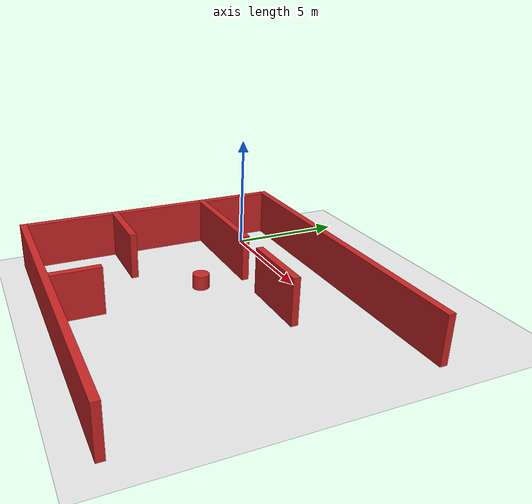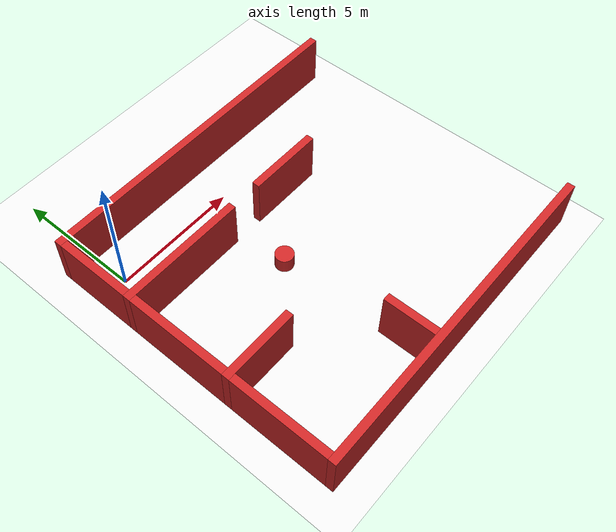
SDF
<sdf version="1.7">
 <world name="default">
  <model name="ground_plane">
   <static>1</static>
   <link name="link">
    <collision name="collision">
     <geometry><plane><normal>0 0 1</normal><size>100 100</size></plane></geometry>
     <surface>
      <contact><collide_bitmask>65535</collide_bitmask></contact>
      <friction><ode><mu>100</mu><mu2>50</mu2></ode></friction>
     </surface>
    </collision>
    <visual name="visual">
     <cast_shadows>0</cast_shadows>
     <geometry><plane><normal>0 0 1</normal><size>100 100</size></plane></geometry>
     <material>
      <script><uri>file://media/materials/scripts/gazebo.material</uri><name>Gazebo/White</name></script>
     </material>
    </visual>
   </link>
  </model>
  <model name="unit_box_clone">
   <link name="link">
    <inertial>
     <mass>1</mass>
     <inertia>
      <ixx>0.166667</ixx>
      <ixy>0</ixy>
      <ixz>0</ixz>
      <iyy>0.166667</iyy>
      <iyz>0</iyz>
      <izz>0.166667</izz>
     </inertia>
    </inertial>
    <visual name="visual">
     <geometry><box><size>5 0.3 2</size></box></geometry>
     <material>
      <script><name>Gazebo/Red</name><uri>file://media/materials/scripts/gazebo.material</uri></script>
      <shader type="pixel"><normal_map>__default__</normal_map></shader>
      <ambient>1 0 0 1</ambient>
      <diffuse>1 0 0 1</diffuse>
      <specular>0.1 0.1 0.1 1</specular>
      <emissive>0 0 0 1</emissive>
     </material>
    </visual>
    <collision name="collision">
     <geometry><box><size>5 0.3 2</size></box></geometry>
     <surface>
      <friction>
       <ode><mu>1</mu><mu2>1</mu2><fdir1>0 0 0</fdir1><slip1>0</slip1><slip2>0</slip2></ode>
       <torsional>
        <coefficient>1</coefficient>
        <patch_radius>0</patch_radius>
        <surface_radius>0</surface_radius>
        <use_patch_radius>1</use_patch_radius>
        <ode><slip>0</slip></ode>
       </torsional>
      </friction>
      <bounce><restitution_coefficient>0</restitution_coefficient><threshold>1e+06</threshold></bounce>
      <contact>
       <collide_without_contact>0</collide_without_contact>
       <collide_without_contact_bitmask>1</collide_without_contact_bitmask>
       <collide_bitmask>1</collide_bitmask>
       <ode>
        <soft_cfm>0</soft_cfm>
        <soft_erp>0.2</soft_erp>
        <kp>1e+13</kp>
        <kd>1</kd>
        <max_vel>0.01</max_vel>
        <min_depth>0</min_depth>
       </ode>
       <bullet>
        <split_impulse>1</split_impulse>
        <split_impulse_penetration_threshold>-0.01</split_impulse_penetration_threshold>
        <soft_cfm>0</soft_cfm>
        <soft_erp>0.2</soft_erp>
        <kp>1e+13</kp>
        <kd>1</kd>
       </bullet>
      </contact>
     </surface>
    </collision>
   </link>
   <static>1</static>
   <pose>1.35 -1.65 1 1e-05 -0 0</pose>
  </model>
  <model name="unit_box">
   <link name="link">
    <inertial>
     <mass>1</mass>
     <inertia>
      <ixx>0.166667</ixx>
      <ixy>0</ixy>
      <ixz>0</ixz>
      <iyy>0.166667</iyy>
      <iyz>0</iyz>
      <izz>0.166667</izz>
     </inertia>
    </inertial>
    <visual name="visual">
     <geometry><box><size>0.3 3 2</size></box></geometry>
     <material>
      <script><name>Gazebo/Red</name><uri>file://media/materials/scripts/gazebo.material</uri></script>
      <shader type="pixel"><normal_map>__default__</normal_map></shader>
      <ambient>1 0 0 1</ambient>
      <diffuse>1 0 0 1</diffuse>
      <specular>0.1 0.1 0.1 1</specular>
      <emissive>0 0 0 1</emissive>
     </material>
    </visual>
    <collision name="collision">
     <geometry><box><size>0.3 3 2</size></box></geometry>
     <surface>
      <friction>
       <ode><mu>1</mu><mu2>1</mu2><fdir1>0 0 0</fdir1><slip1>0</slip1><slip2>0</slip2></ode>
       <torsional>
        <coefficient>1</coefficient>
        <patch_radius>0</patch_radius>
        <surface_radius>0</surface_radius>
        <use_patch_radius>1</use_patch_radius>
        <ode><slip>0</slip></ode>
       </torsional>
      </friction>
      <bounce><restitution_coefficient>0</restitution_coefficient><threshold>1e+06</threshold></bounce>
      <contact>
       <collide_without_contact>0</collide_without_contact>
       <collide_without_contact_bitmask>1</collide_without_contact_bitmask>
       <collide_bitmask>1</collide_bitmask>
       <ode>
        <soft_cfm>0</soft_cfm>
        <soft_erp>0.2</soft_erp>
        <kp>1e+13</kp>
        <kd>1</kd>
        <max_vel>0.01</max_vel>
        <min_depth>0</min_depth>
       </ode>
       <bullet>
        <split_impulse>1</split_impulse>
        <split_impulse_penetration_threshold>-0.01</split_impulse_penetration_threshold>
        <soft_cfm>0</soft_cfm>
        <soft_erp>0.2</soft_erp>
        <kp>1e+13</kp>
        <kd>1</kd>
       </bullet>
      </contact>
     </surface>
    </collision>
   </link>
   <static>1</static>
   <pose>-1 0 1 1e-05 -0 0</pose>
  </model>
  <model name="unit_box_clone_clone_0">
   <link name="link">
    <inertial>
     <mass>1</mass>
     <inertia>
      <ixx>0.166667</ixx>
      <ixy>0</ixy>
      <ixz>0</ixz>
      <iyy>0.166667</iyy>
      <iyz>0</iyz>
      <izz>0.166667</izz>
     </inertia>
    </inertial>
    <visual name="visual">
     <geometry><box><size>13.4 0.3 2</size></box></geometry>
     <material>
      <script><name>Gazebo/Red</name><uri>file://media/materials/scripts/gazebo.material</uri></script>
      <shader type="pixel"><normal_map>__default__</normal_map></shader>
      <ambient>1 0 0 1</ambient>
      <diffuse>1 0 0 1</diffuse>
      <specular>0.1 0.1 0.1 1</specular>
      <emissive>0 0 0 1</emissive>
     </material>
    </visual>
    <collision name="collision">
     <geometry><box><size>13.4 0.3 2</size></box></geometry>
     <surface>
      <friction>
       <ode><mu>1</mu><mu2>1</mu2><fdir1>0 0 0</fdir1><slip1>0</slip1><slip2>0</slip2></ode>
       <torsional>
        <coefficient>1</coefficient>
        <patch_radius>0</patch_radius>
        <surface_radius>0</surface_radius>
        <use_patch_radius>1</use_patch_radius>
        <ode><slip>0</slip></ode>
       </torsional>
      </friction>
      <bounce><restitution_coefficient>0</restitution_coefficient><threshold>1e+06</threshold></bounce>
      <contact>
       <collide_without_contact>0</collide_without_contact>
       <collide_without_contact_bitmask>1</collide_without_contact_bitmask>
       <collide_bitmask>1</collide_bitmask>
       <ode>
        <soft_cfm>0</soft_cfm>
        <soft_erp>0.2</soft_erp>
        <kp>1e+13</kp>
        <kd>1</kd>
        <max_vel>0.01</max_vel>
        <min_depth>0</min_depth>
       </ode>
       <bullet>
        <split_impulse>1</split_impulse>
        <split_impulse_penetration_threshold>-0.01</split_impulse_penetration_threshold>
        <soft_cfm>0</soft_cfm>
        <soft_erp>0.2</soft_erp>
        <kp>1e+13</kp>
        <kd>1</kd>
       </bullet>
      </contact>
     </surface>
    </collision>
   </link>
   <static>1</static>
   <pose>5.55 1.65 1 1e-05 -0 0</pose>
  </model>
  <model name="unit_box_clone_clone">
   <link name="link">
    <inertial>
     <mass>1</mass>
     <inertia>
      <ixx>0.166667</ixx>
      <ixy>0</ixy>
      <ixz>0</ixz>
      <iyy>0.166667</iyy>
      <iyz>0</iyz>
      <izz>0.166667</izz>
     </inertia>
    </inertial>
    <visual name="visual">
     <geometry><box><size>3 0.3 2</size></box></geometry>
     <material>
      <script><name>Gazebo/Red</name><uri>file://media/materials/scripts/gazebo.material</uri></script>
      <shader type="pixel"><normal_map>__default__</normal_map></shader>
      <ambient>1 0 0 1</ambient>
      <diffuse>1 0 0 1</diffuse>
      <specular>0.1 0.1 0.1 1</specular>
      <emissive>0 0 0 1</emissive>
     </material>
    </visual>
    <collision name="collision">
     <geometry><box><size>3 0.3 2</size></box></geometry>
     <surface>
      <friction>
       <ode><mu>1</mu><mu2>1</mu2><fdir1>0 0 0</fdir1><slip1>0</slip1><slip2>0</slip2></ode>
       <torsional>
        <coefficient>1</coefficient>
        <patch_radius>0</patch_radius>
        <surface_radius>0</surface_radius>
        <use_patch_radius>1</use_patch_radius>
        <ode><slip>0</slip></ode>
       </torsional>
      </friction>
      <bounce><restitution_coefficient>0</restitution_coefficient><threshold>1e+06</threshold></bounce>
      <contact>
       <collide_without_contact>0</collide_without_contact>
       <collide_without_contact_bitmask>1</collide_without_contact_bitmask>
       <collide_bitmask>1</collide_bitmask>
       <ode>
        <soft_cfm>0</soft_cfm>
        <soft_erp>0.2</soft_erp>
        <kp>1e+13</kp>
        <kd>1</kd>
        <max_vel>0.01</max_vel>
        <min_depth>0</min_depth>
       </ode>
       <bullet>
        <split_impulse>1</split_impulse>
        <split_impulse_penetration_threshold>-0.01</split_impulse_penetration_threshold>
        <soft_cfm>0</soft_cfm>
        <soft_erp>0.2</soft_erp>
        <kp>1e+13</kp>
        <kd>1</kd>
       </bullet>
      </contact>
     </surface>
    </collision>
   </link>
   <static>1</static>
   <pose>6.55 -1.65 1 1e-05 -0 0</pose>
  </model>
  <model name="unit_cylinder">
   <link name="link">
    <inertial>
     <mass>1</mass>
     <inertia><ixx>0.145833</ixx><ixy>0</ixy><ixz>0</ixz><iyy>0.145833</iyy><iyz>0</iyz><izz>0.125</izz></inertia>
    </inertial>
    <visual name="visual">
     <geometry><cylinder><radius>0.35</radius><length>0.6</length></cylinder></geometry>
     <material>
      <script><name>Gazebo/Red</name><uri>file://media/materials/scripts/gazebo.material</uri></script>
      <shader type="pixel"><normal_map>__default__</normal_map></shader>
      <ambient>1 0 0 1</ambient>
      <diffuse>1 0 0 1</diffuse>
      <specular>0.1 0.1 0.1 1</specular>
      <emissive>0 0 0 1</emissive>
     </material>
    </visual>
    <collision name="collision">
     <geometry><cylinder><radius>0.35</radius><length>0.6</length></cylinder></geometry>
     <surface>
      <friction>
       <ode><mu>1</mu><mu2>1</mu2><fdir1>0 0 0</fdir1><slip1>0</slip1><slip2>0</slip2></ode>
       <torsional>
        <coefficient>1</coefficient>
        <patch_radius>0</patch_radius>
        <surface_radius>0</surface_radius>
        <use_patch_radius>1</use_patch_radius>
        <ode><slip>0</slip></ode>
       </torsional>
      </friction>
      <bounce><restitution_coefficient>0</restitution_coefficient><threshold>1e+06</threshold></bounce>
      <contact>
       <collide_without_contact>0</collide_without_contact>
       <collide_without_contact_bitmask>1</collide_without_contact_bitmask>
       <collide_bitmask>1</collide_bitmask>
       <ode>
        <soft_cfm>0</soft_cfm>
        <soft_erp>0.2</soft_erp>
        <kp>1e+13</kp>
        <kd>1</kd>
        <max_vel>0.01</max_vel>
        <min_depth>0</min_depth>
       </ode>
       <bullet>
        <split_impulse>1</split_impulse>
        <split_impulse_penetration_threshold>-0.01</split_impulse_penetration_threshold>
        <soft_cfm>0</soft_cfm>
        <soft_erp>0.2</soft_erp>
        <kp>1e+13</kp>
        <kd>1</kd>
       </bullet>
      </contact>
     </surface>
    </collision>
   </link>
   <static>1</static>
   <pose>4.1 -3.8 0.499997 2e-06 4e-06 -0</pose>
  </model>
  <model name="unit_box_clone_1">
   <link name="link">
    <inertial>
     <mass>1</mass>
     <inertia>
      <ixx>0.166667</ixx>
      <ixy>0</ixy>
      <ixz>0</ixz>
      <iyy>0.166667</iyy>
      <iyz>0</iyz>
      <izz>0.166667</izz>
     </inertia>
    </inertial>
    <visual name="visual">
     <geometry><box><size>0.3 4 2</size></box></geometry>
     <material>
      <script><name>Gazebo/Red</name><uri>file://media/materials/scripts/gazebo.material</uri></script>
      <shader type="pixel"><normal_map>__default__</normal_map></shader>
      <ambient>1 0 0 1</ambient>
      <diffuse>1 0 0 1</diffuse>
      <specular>0.1 0.1 0.1 1</specular>
      <emissive>0 0 0 1</emissive>
     </material>
    </visual>
    <collision name="collision">
     <geometry><box><size>0.3 4 2</size></box></geometry>
     <surface>
      <friction>
       <ode><mu>1</mu><mu2>1</mu2><fdir1>0 0 0</fdir1><slip1>0</slip1><slip2>0</slip2></ode>
       <torsional>
        <coefficient>1</coefficient>
        <patch_radius>0</patch_radius>
        <surface_radius>0</surface_radius>
        <use_patch_radius>1</use_patch_radius>
        <ode><slip>0</slip></ode>
       </torsional>
      </friction>
      <bounce><restitution_coefficient>0</restitution_coefficient><threshold>1e+06</threshold></bounce>
      <contact>
       <collide_without_contact>0</collide_without_contact>
       <collide_without_contact_bitmask>1</collide_without_contact_bitmask>
       <collide_bitmask>1</collide_bitmask>
       <ode>
        <soft_cfm>0</soft_cfm>
        <soft_erp>0.2</soft_erp>
        <kp>1e+13</kp>
        <kd>1</kd>
        <max_vel>0.01</max_vel>
        <min_depth>0</min_depth>
       </ode>
       <bullet>
        <split_impulse>1</split_impulse>
        <split_impulse_penetration_threshold>-0.01</split_impulse_penetration_threshold>
        <soft_cfm>0</soft_cfm>
        <soft_erp>0.2</soft_erp>
        <kp>1e+13</kp>
        <kd>1</kd>
       </bullet>
      </contact>
     </surface>
    </collision>
   </link>
   <static>1</static>
   <pose>-1 -3.8 1 1e-05 -0 0</pose>
  </model>
  <model name="unit_box_clone_clone_0_clone_0">
   <link name="link">
    <inertial>
     <mass>1</mass>
     <inertia>
      <ixx>0.166667</ixx>
      <ixy>0</ixy>
      <ixz>0</ixz>
      <iyy>0.166667</iyy>
      <iyz>0</iyz>
      <izz>0.166667</izz>
     </inertia>
    </inertial>
    <visual name="visual">
     <geometry><box><size>13.4 0.3 2</size></box></geometry>
     <material>
      <script><name>Gazebo/Red</name><uri>file://media/materials/scripts/gazebo.material</uri></script>
      <shader type="pixel"><normal_map>__default__</normal_map></shader>
      <ambient>1 0 0 1</ambient>
      <diffuse>1 0 0 1</diffuse>
      <specular>0.1 0.1 0.1 1</specular>
      <emissive>0 0 0 1</emissive>
     </material>
    </visual>
    <collision name="collision">
     <geometry><box><size>13.4 0.3 2</size></box></geometry>
     <surface>
      <friction>
       <ode><mu>1</mu><mu2>1</mu2><fdir1>0 0 0</fdir1><slip1>0</slip1><slip2>0</slip2></ode>
       <torsional>
        <coefficient>1</coefficient>
        <patch_radius>0</patch_radius>
        <surface_radius>0</surface_radius>
        <use_patch_radius>1</use_patch_radius>
        <ode><slip>0</slip></ode>
       </torsional>
      </friction>
      <bounce><restitution_coefficient>0</restitution_coefficient><threshold>1e+06</threshold></bounce>
      <contact>
       <collide_without_contact>0</collide_without_contact>
       <collide_without_contact_bitmask>1</collide_without_contact_bitmask>
       <collide_bitmask>1</collide_bitmask>
       <ode>
        <soft_cfm>0</soft_cfm>
        <soft_erp>0.2</soft_erp>
        <kp>1e+13</kp>
        <kd>1</kd>
        <max_vel>0.01</max_vel>
        <min_depth>0</min_depth>
       </ode>
       <bullet>
        <split_impulse>1</split_impulse>
        <split_impulse_penetration_threshold>-0.01</split_impulse_penetration_threshold>
        <soft_cfm>0</soft_cfm>
        <soft_erp>0.2</soft_erp>
        <kp>1e+13</kp>
        <kd>1</kd>
       </bullet>
      </contact>
     </surface>
    </collision>
   </link>
   <static>1</static>
   <pose>5.55 -10.05 1 1e-05 -0 0</pose>
  </model>
  <model name="unit_box_clone_1_clone_clone_clone_0_clone_0">
   <link name="link">
    <inertial>
     <mass>1</mass>
     <inertia>
      <ixx>0.166667</ixx>
      <ixy>0</ixy>
      <ixz>0</ixz>
      <iyy>0.166667</iyy>
      <iyz>0</iyz>
      <izz>0.166667</izz>
     </inertia>
    </inertial>
    <visual name="visual">
     <geometry><box><size>0.3 2 2</size></box></geometry>
     <material>
      <script><name>Gazebo/Red</name><uri>file://media/materials/scripts/gazebo.material</uri></script>
      <shader type="pixel"><normal_map>__default__</normal_map></shader>
      <ambient>1 0 0 1</ambient>
      <diffuse>1 0 0 1</diffuse>
      <specular>0.1 0.1 0.1 1</specular>
      <emissive>0 0 0 1</emissive>
     </material>
    </visual>
    <collision name="collision">
     <geometry><box><size>0.3 2 2</size></box></geometry>
     <surface>
      <friction>
       <ode><mu>1</mu><mu2>1</mu2><fdir1>0 0 0</fdir1><slip1>0</slip1><slip2>0</slip2></ode>
       <torsional>
        <coefficient>1</coefficient>
        <patch_radius>0</patch_radius>
        <surface_radius>0</surface_radius>
        <use_patch_radius>1</use_patch_radius>
        <ode><slip>0</slip></ode>
       </torsional>
      </friction>
      <bounce><restitution_coefficient>0</restitution_coefficient><threshold>1e+06</threshold></bounce>
      <contact>
       <collide_without_contact>0</collide_without_contact>
       <collide_without_contact_bitmask>1</collide_without_contact_bitmask>
       <collide_bitmask>1</collide_bitmask>
       <ode>
        <soft_cfm>0</soft_cfm>
        <soft_erp>0.2</soft_erp>
        <kp>1e+13</kp>
        <kd>1</kd>
        <max_vel>0.01</max_vel>
        <min_depth>0</min_depth>
       </ode>
       <bullet>
        <split_impulse>1</split_impulse>
        <split_impulse_penetration_threshold>-0.01</split_impulse_penetration_threshold>
        <soft_cfm>0</soft_cfm>
        <soft_erp>0.2</soft_erp>
        <kp>1e+13</kp>
        <kd>1</kd>
       </bullet>
      </contact>
     </surface>
    </collision>
   </link>
   <static>1</static>
   <pose>4.3 -8.9 1 1e-05 -0 0</pose>
  </model>
  <model name="unit_box_clone_1_clone_clone_clone">
   <link name="link">
    <inertial>
     <mass>1</mass>
     <inertia>
      <ixx>0.166667</ixx>
      <ixy>0</ixy>
      <ixz>0</ixz>
      <iyy>0.166667</iyy>
      <iyz>0</iyz>
      <izz>0.166667</izz>
     </inertia>
    </inertial>
    <visual name="visual">
     <geometry><box><size>0.3 3.8 2</size></box></geometry>
     <material>
      <script><name>Gazebo/Red</name><uri>file://media/materials/scripts/gazebo.material</uri></script>
      <shader type="pixel"><normal_map>__default__</normal_map></shader>
      <ambient>1 0 0 1</ambient>
      <diffuse>1 0 0 1</diffuse>
      <specular>0.1 0.1 0.1 1</specular>
      <emissive>0 0 0 1</emissive>
     </material>
    </visual>
    <collision name="collision">
     <geometry><box><size>0.3 3.8 2</size></box></geometry>
     <surface>
      <friction>
       <ode><mu>1</mu><mu2>1</mu2><fdir1>0 0 0</fdir1><slip1>0</slip1><slip2>0</slip2></ode>
       <torsional>
        <coefficient>1</coefficient>
        <patch_radius>0</patch_radius>
        <surface_radius>0</surface_radius>
        <use_patch_radius>1</use_patch_radius>
        <ode><slip>0</slip></ode>
       </torsional>
      </friction>
      <bounce><restitution_coefficient>0</restitution_coefficient><threshold>1e+06</threshold></bounce>
      <contact>
       <collide_without_contact>0</collide_without_contact>
       <collide_without_contact_bitmask>1</collide_without_contact_bitmask>
       <collide_bitmask>1</collide_bitmask>
       <ode>
        <soft_cfm>0</soft_cfm>
        <soft_erp>0.2</soft_erp>
        <kp>1e+13</kp>
        <kd>1</kd>
        <max_vel>0.01</max_vel>
        <min_depth>0</min_depth>
       </ode>
       <bullet>
        <split_impulse>1</split_impulse>
        <split_impulse_penetration_threshold>-0.01</split_impulse_penetration_threshold>
        <soft_cfm>0</soft_cfm>
        <soft_erp>0.2</soft_erp>
        <kp>1e+13</kp>
        <kd>1</kd>
       </bullet>
      </contact>
     </surface>
    </collision>
   </link>
   <static>1</static>
   <pose>-1 -8 1 1e-05 -0 0</pose>
  </model>
  <model name="unit_box_clone_clone_clone_0">
   <link name="link">
    <inertial>
     <mass>1</mass>
     <inertia>
      <ixx>0.166667</ixx>
      <ixy>0</ixy>
      <ixz>0</ixz>
      <iyy>0.166667</iyy>
      <iyz>0</iyz>
      <izz>0.166667</izz>
     </inertia>
    </inertial>
    <visual name="visual">
     <geometry><box><size>3 0.3 2</size></box></geometry>
     <material>
      <script><name>Gazebo/Red</name><uri>file://media/materials/scripts/gazebo.material</uri></script>
      <shader type="pixel"><normal_map>__default__</normal_map></shader>
      <ambient>1 0 0 1</ambient>
      <diffuse>1 0 0 1</diffuse>
      <specular>0.1 0.1 0.1 1</specular>
      <emissive>0 0 0 1</emissive>
     </material>
    </visual>
    <collision name="collision">
     <geometry><box><size>3 0.25 2</size></box></geometry>
     <surface>
      <friction>
       <ode><mu>1</mu><mu2>1</mu2><fdir1>0 0 0</fdir1><slip1>0</slip1><slip2>0</slip2></ode>
       <torsional>
        <coefficient>1</coefficient>
        <patch_radius>0</patch_radius>
        <surface_radius>0</surface_radius>
        <use_patch_radius>1</use_patch_radius>
        <ode><slip>0</slip></ode>
       </torsional>
      </friction>
      <bounce><restitution_coefficient>0</restitution_coefficient><threshold>1e+06</threshold></bounce>
      <contact>
       <collide_without_contact>0</collide_without_contact>
       <collide_without_contact_bitmask>1</collide_without_contact_bitmask>
       <collide_bitmask>1</collide_bitmask>
       <ode>
        <soft_cfm>0</soft_cfm>
        <soft_erp>0.2</soft_erp>
        <kp>1e+13</kp>
        <kd>1</kd>
        <max_vel>0.01</max_vel>
        <min_depth>0</min_depth>
       </ode>
       <bullet>
        <split_impulse>1</split_impulse>
        <split_impulse_penetration_threshold>-0.01</split_impulse_penetration_threshold>
        <soft_cfm>0</soft_cfm>
        <soft_erp>0.2</soft_erp>
        <kp>1e+13</kp>
        <kd>1</kd>
       </bullet>
      </contact>
     </surface>
    </collision>
   </link>
   <static>1</static>
   <pose>0.35 -5.95 1 1e-05 -0 0</pose>
  </model>
 </world>
</sdf>
